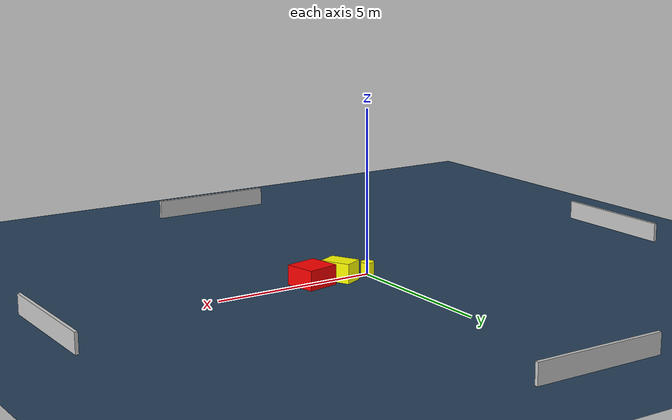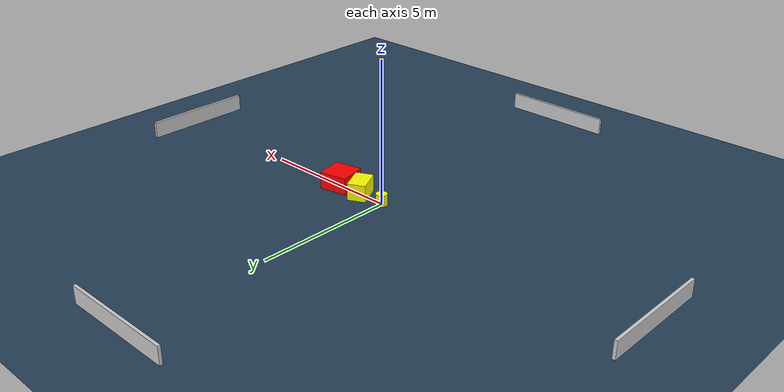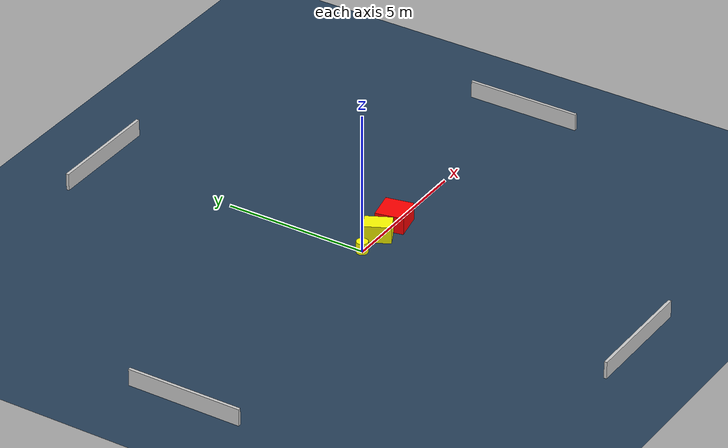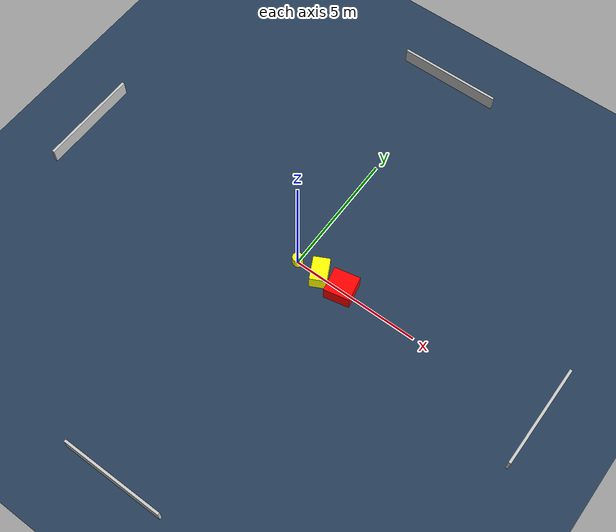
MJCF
<?xml version="1.0" ?>
<mujoco model="generated_environment">
  <option timestep="0.01" integrator="RK4" cone="elliptic"/>
  <default>
    <geom density="1"/>
  </default>
  <asset>
    <texture builtin="gradient" height="3072" name="skybox" rgb1="0.3 0.5 0.7" rgb2="0 0 0" type="skybox" width="512"/>
    <texture builtin="checker" height="300" name="groundplane" rgb1="0.2 0.3 0.4" rgb2="0.1 0.2 0.3" type="2d" width="300"/>
    <material name="groundplane" reflectance="0.2" texrepeat="5 5" texture="groundplane"/>
  </asset>
  <worldbody>
    <light dir="0 0 -1" directional="true" pos="0 0 1.5"/>
    <geom condim="3" friction="0.5 0.005 0.001" material="groundplane" name="floor" pos="0 0 0" size="0 0 0.05" type="plane"/>
    <body name="walls">
      <geom name="wall_1" condim="4" pos="-10.0 0.0 0.3" rgba="0.800000011920929 0.800000011920929 0.800000011920929 1.0" size="0.05 2.0 0.3" type="box"/>
      <geom name="wall_2" condim="4" pos="10.0 0.0 0.3" rgba="0.800000011920929 0.800000011920929 0.800000011920929 1.0" size="0.05 2.0 0.3" type="box"/>
      <geom name="wall_3" condim="4" pos="0.0 -10.0 0.3" rgba="0.800000011920929 0.800000011920929 0.800000011920929 1.0" size="2.0 0.05 0.3" type="box"/>
      <geom name="wall_4" condim="4" pos="0.0 10.0 0.3" rgba="0.800000011920929 0.800000011920929 0.800000011920929 1.0" size="2.0 0.05 0.3" type="box"/>
    </body>
    <body name="robot">
      <joint name="joint_x" type="slide" pos="0 0 0" axis="1 0 0"/>
      <joint name="joint_y" type="slide" pos="0 0 0" axis="0 1 0"/>
      <geom name="robot" type="cylinder" pos="0.0 0.0 0.2" size="0.2 0.2 0.0" mass="5.0" friction="1.0 0.005 0.0001" condim="4" rgba="1.0 1.0 0.0 1.0"/>
    </body>
    <body name="obstacle_1_movable">
      <geom name="obstacle_1_movable" condim="4" pos="0.9658079403762251 0.016942662503397012 0.3" euler="0 0 206.77814467351922" friction="0.0 0.005 0.001" rgba="1.0 1.0 0.0 1.0" size="0.3176557676293975 0.46178854405016817 0.3" type="box" mass="0.1"/>
      <joint type="free"/>
    </body>
    <body name="obstacle_2_static">
      <geom name="obstacle_2_static" condim="4" pos="1.933642425285075 0.002618773658100925 0.3" euler="0 0 101.62271438306902" friction="0.0 0.005 0.001" rgba="1.0 0.0 0.0 1.0" size="0.48639992884461764 0.49889343292214633 0.3" type="box"/>
    </body>
  </worldbody>
  <actuator>
    <motor name="actuator_x" joint="joint_x" gear="1" ctrlrange="-1 1"/>
    <motor name="actuator_y" joint="joint_y" gear="1" ctrlrange="-1 1"/>
  </actuator>
</mujoco>
